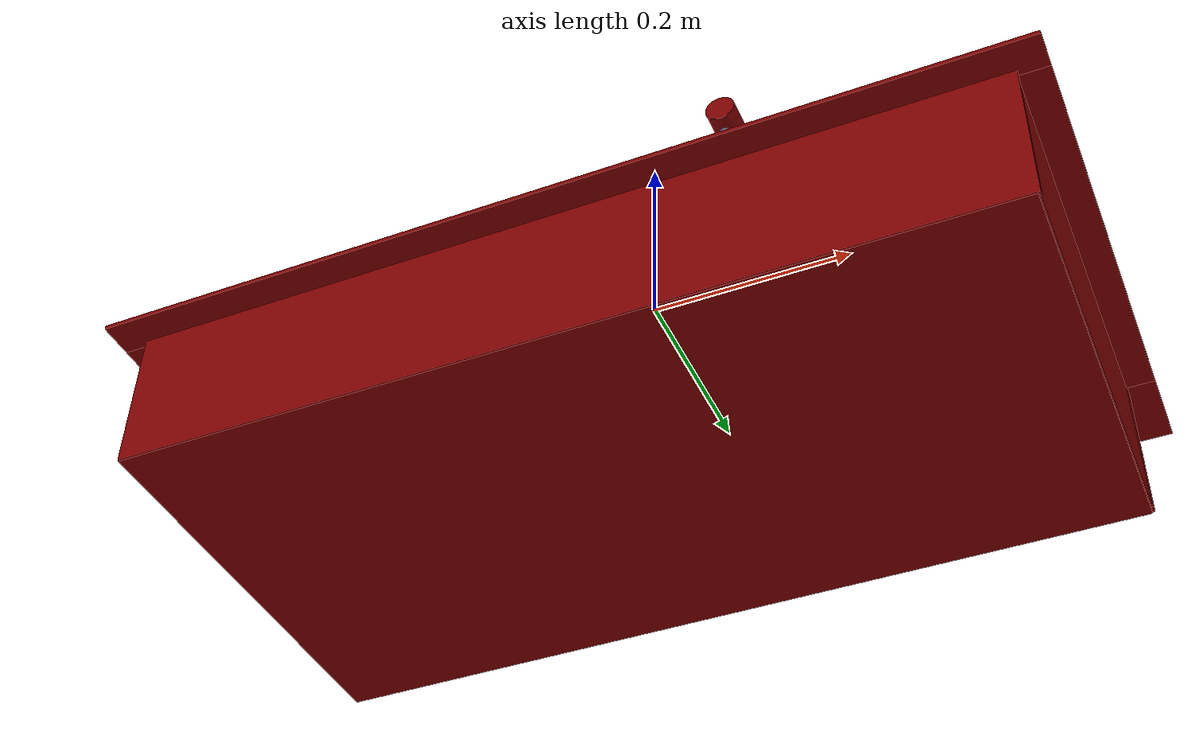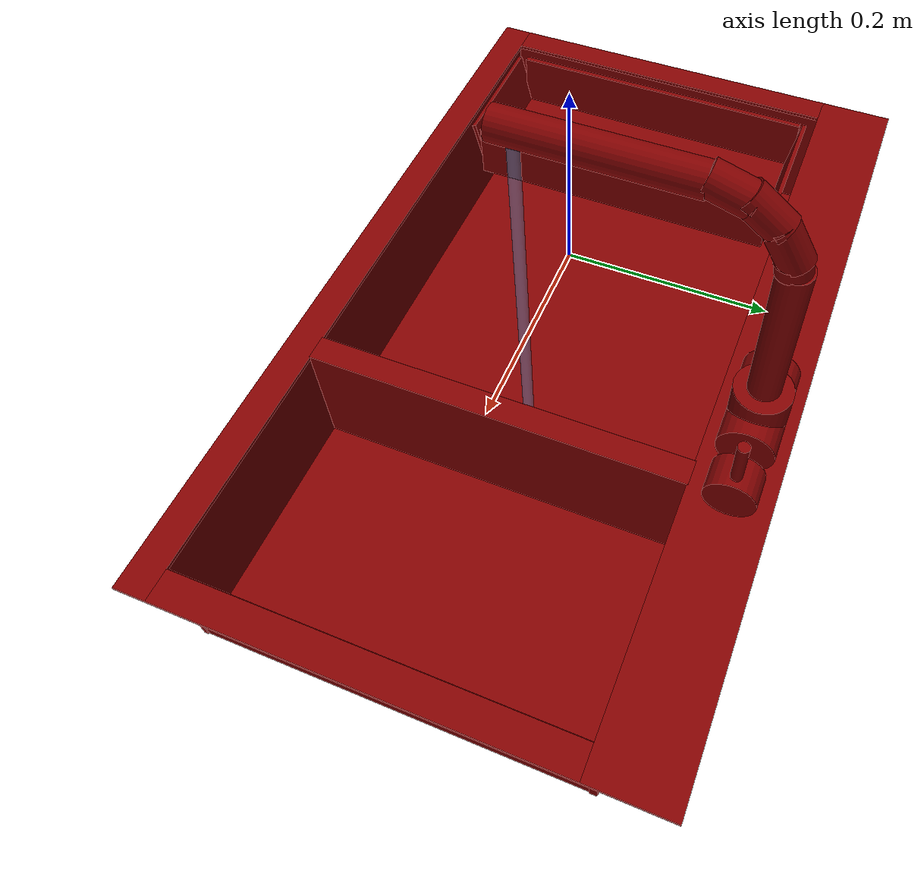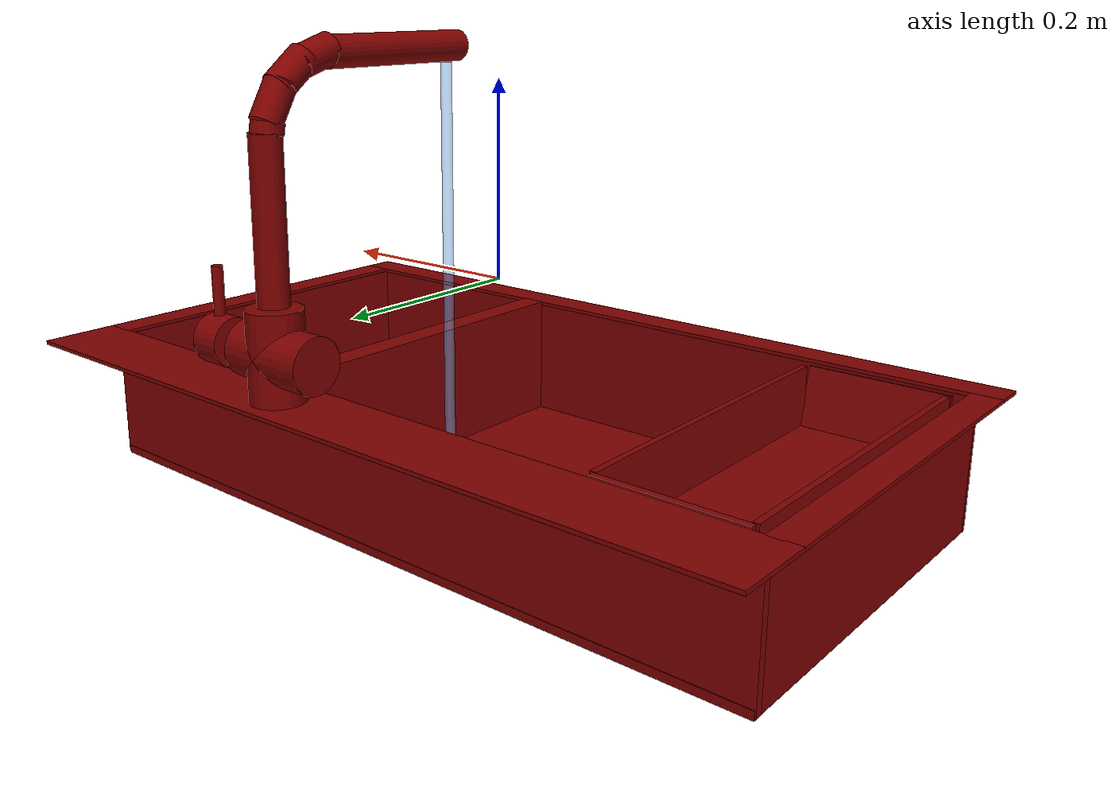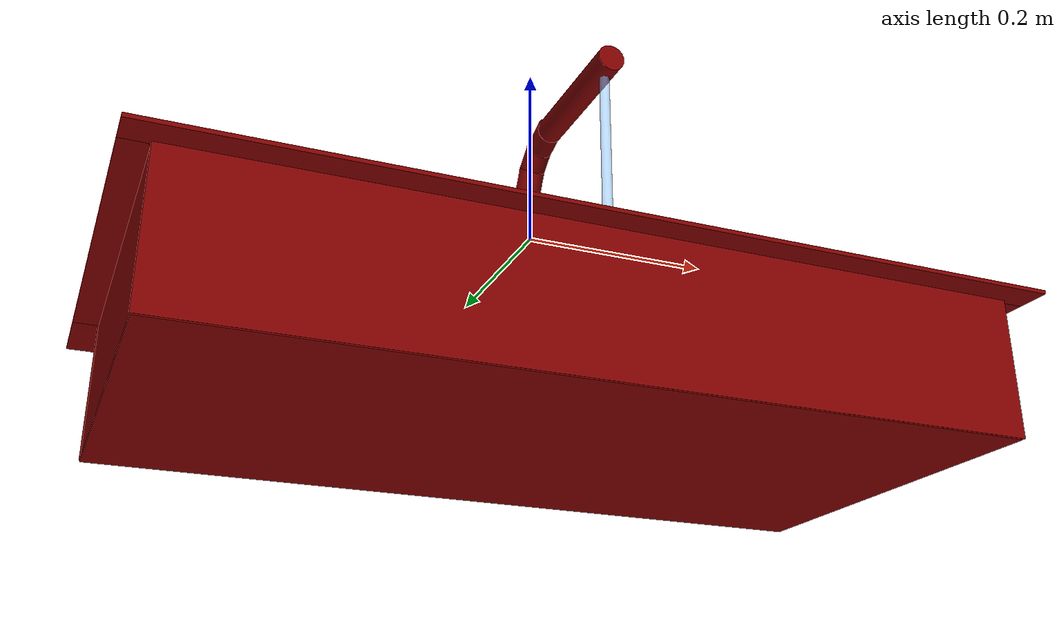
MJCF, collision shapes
<?xml version='1.0' encoding='UTF-8'?>
<mujoco model="model">
  <option timestep="0.002" gravity="0.0 0.0 -9.81"/>
  <compiler angle="radian"/>
  <asset>
    <mesh file="visuals/handle.obj" name="handle_vis"/>
    <mesh file="visuals/Body001.obj" name="Body001_vis"/>
    <mesh file="visuals/Shelf001.obj" name="Shelf001_vis"/>
    <mesh file="visuals/spout.obj" name="spout_vis"/>
    <texture file="visuals/T_BC001.png" name="Body001_material" type="2d"/>
    <material name="Body001_material" rgba="1 1 1 1.0" texture="Body001_material" shininess="0.5" specular="1"/>
    <texture file="visuals/T_BC001.png" name="handle_material" type="2d"/>
    <material name="handle_material" rgba="1 1 1 1.0" texture="handle_material" shininess="0.5" specular="1"/>
    <texture file="visuals/T_BC001.png" name="Shelf001_material" type="2d"/>
    <material name="Shelf001_material" rgba="1 1 1 1.0" texture="Shelf001_material" shininess="0.5" specular="1"/>
    <texture file="visuals/T_BC001.png" name="spout_material" type="2d"/>
    <material name="spout_material" rgba="1 1 1 1.0" texture="spout_material" shininess="0.5" specular="1"/>
  </asset>
  <default>
    <default class="visual">
      <geom conaffinity="0" contype="0" group="1" type="mesh"/>
    </default>
    <default class="collision">
      <geom group="0" rgba="0.5 0 0 0.5" solimp="0.998 0.998 0.001" solref="0.001 2"/>
    </default>
    <default class="spawn">
      <geom group="0" rgba="1 1 1 0.5" contype="0" conaffinity="0"/>
      <site group="0" rgba="1 1 1 0.5"/>
    </default>
    <default class="region">
      <geom group="1" conaffinity="0" contype="0" rgba="0 1 0 0"/>
    </default>
  </default>
  <worldbody>
    <body>
      <body name="object">
        <geom mesh="Body001_vis" type="mesh" solimp="0.998 0.998 0.001" solref="0.001 1" friction="0.95 0.3 0.1" class="visual" material="Body001_material"/>
        <geom class="collision" type="box" pos="-0.00000005 0.21959068 -0.09269838" size="0.43433523178100586 0.041592076420784 0.0019503131043165922" quat="1.0 0.0 0.0 0.0"/>
        <geom class="collision" type="box" pos="-0.00000003 -0.24408982 -0.09269834" size="0.4343351721763611 0.017092427238821983 0.001950352219864726" quat="1.0 0.0 0.0 0.0"/>
        <geom class="collision" type="box" pos="-0.41879227 -0.02447526 -0.09269837" size="0.015541956759989262 0.20394594967365265 0.0019503191579133272" quat="1.0 0.0 0.0 0.0"/>
        <geom class="collision" type="box" pos="0.41818604 -0.02447526 -0.09269837" size="0.016148144379258156 0.20394587516784668 0.0019503184594213963" quat="1.0 0.0 0.0 0.0"/>
        <geom class="collision" type="box" pos="0.40387682 -0.02447526 -0.16496660" size="0.003125104121863842 0.20394578576087952 0.07081758230924606" quat="1.0 0.0 0.0 0.0"/>
        <geom class="collision" type="box" pos="-0.40555182 -0.02447526 -0.16496660" size="0.0031210673041641712 0.20394569635391235 0.07081753760576248" quat="1.0 0.0 0.0 0.0"/>
        <geom class="collision" type="box" pos="-0.00040592 -0.23033389 -0.16496660" size="0.40844181180000305 0.0025401690509170294 0.0708174929022789" quat="1.0 0.0 0.0 0.0"/>
        <geom class="collision" type="box" pos="-0.00063184 0.18240607 -0.16496660" size="0.4087074100971222 0.003984054084867239 0.07081745564937592" quat="1.0 0.0 0.0 0.0"/>
        <geom class="collision" type="box" pos="-0.00126101 -0.02277486 -0.23261875" size="0.4069124162197113 0.20979003608226776 0.004384987056255341" quat="1.0 0.0 0.0 0.0"/>
        <geom class="collision" type="box" pos="0.13953832 -0.02447526 -0.16326587" size="0.01370252389460802 0.20394520461559296 0.072517991065979" quat="1.0 0.0 0.0 0.0"/>
        <geom class="collision" type="cylinder" pos="0.08531411 0.22047810 -0.04586746" size="0.028146835044026375 0.04497091472148895" quat="1.0 0.0 0.0 0.0"/>
        <geom class="collision" type="cylinder" pos="0.07746895 0.22047810 -0.04586746" size="0.028146835044026375 0.049508947879076004" quat="0.7071068286895752 -0.0 0.7071067690849304 0.0"/>
        <body name="handle">
          <joint axis="1.0 0.0 0.0" pos="0.15564533 0.22090486 -0.04684061" limited="true" name="handle_temp_joint" type="hinge" range="-0.7853981633974483 0.7853981633974483" damping="0.5" frictionloss="1" armature="2"/>
          <joint axis="0.0 1.0 0.0" pos="0.15564533 0.22090486 -0.04684061" limited="true" name="handle_joint" type="hinge" range="0 0.5" damping="0.5" frictionloss="1" armature="2"/>
          <geom mesh="handle_vis" type="mesh" solimp="0.998 0.998 0.001" solref="0.001 1" friction="0.95 0.3 0.1" class="visual" material="handle_material"/>
          <geom class="collision" type="cylinder" pos="0.16359383 0.22057717 -0.04616467" size="0.025074021890759468 0.016494393348693848" quat="0.7071068286895752 -0.0 0.7071067690849304 0.0"/>
          <geom name="handle_main" class="collision" type="cylinder" pos="0.16848556 0.22087974 0.00247903" size="0.005681407637894154 0.024712152779102325" quat="1.0 0.0 0.0 0.0"/>
        </body>
        <body name="Shelf001">
          <joint axis="0.0 0.0 1.0" pos="-0.31299823 -0.01496042 -0.12675798" limited="true" name="Shelf001_joint" range="0.0 0.1" type="slide" damping="1" frictionloss="1" armature=".01" stiffness="0.05"/>
          <geom mesh="Shelf001_vis" type="mesh" solimp="0.998 0.998 0.001" solref="0.001 1" friction="0.95 0.3 0.1" class="visual" material="Shelf001_material"/>
          <geom class="collision" type="box" pos="-0.38576856 -0.02591783 -0.12914345" size="0.003121057990938425 0.18550615012645721 0.03499402478337288" quat="1.0 0.0 0.0 0.0"/>
          <geom class="collision" type="box" pos="-0.23709647 -0.02591783 -0.12914345" size="0.003121056826785207 0.18550606071949005 0.03499400243163109" quat="1.0 0.0 0.0 0.0"/>
          <geom class="collision" type="box" pos="-0.31327086 -0.21439934 -0.13034298" size="0.07432298362255096 0.0024261516518890858 0.034993961453437805" quat="0.9940372705459595 0.10904084146022797 0.0 0.0"/>
          <geom class="collision" type="box" pos="-0.31327086 0.15936394 -0.12808326" size="0.07432298362255096 0.0024261516518890858 0.034993961453437805" quat="0.9963814616203308 -0.08499402552843094 -0.0 0.0"/>
          <geom class="collision" type="box" pos="-0.31256491 -0.02591783 -0.16120476" size="0.07255270332098007 0.1855059713125229 0.0029326591175049543" quat="1.0 0.0 0.0 0.0"/>
        </body>
        <body name="spout">
          <joint axis="0.0 0.0 1.0" pos="0.08466801 0.22048787 0.12118351" limited="true" name="spout_joint" range="-1.2217304763960306 1.2217304763960306" type="hinge" damping="10"/>
          <site type="cylinder" rgba="0.5 0.75 1 0.5" size="0.005716228857636452 0.222311332821846" pos="0.08421869 -0.01453175 -0.01146635" name="water"/>
          <geom mesh="spout_vis" type="mesh" solimp="0.998 0.998 0.001" solref="0.001 1" friction="0.95 0.3 0.1" class="visual" material="spout_material"/>
          <geom class="collision" type="cylinder" pos="0.08531411 0.22047810 0.08081535" size="0.015766173601150513 0.07984970510005951" quat="1.0 0.0 0.0 0.0"/>
          <geom class="collision" type="cylinder" pos="0.08531411 0.20923931 0.18625373" size="0.015766173601150513 0.020500902086496353" quat="0.9670015573501587 0.254770427942276 0.0 0.0"/>
          <geom class="collision" type="cylinder" pos="0.08531411 0.18794415 0.21167788" size="0.015766173601150513 0.020500902086496353" quat="0.9004788994789124 0.4348997473716736 0.0 0.0"/>
          <geom class="collision" type="cylinder" pos="0.08531411 0.21762432 0.16426310" size="0.015766173601150513 0.005798363126814365" quat="0.9954514503479004 0.09527008980512619 0.0 0.0"/>
          <geom class="collision" type="cylinder" pos="0.08531411 0.16038254 0.22503071" size="0.015766173601150513 0.020500902086496353" quat="0.8072229027748108 0.5902467370033264 0.0 0.0"/>
          <geom class="collision" type="cylinder" pos="0.08531411 0.05558127 0.22776975" size="0.015766173601150513 0.08815393596887589" quat="0.7071067094802856 0.7071068286895752 0.0 0.0" name="spout_main"/>
        </body>
        <geom class="region" name="reg_basin_left" type="box" pos="-0.051064645000000006 -0.024452210000000002 -0.15938067" size="0.172672575 0.19825164 0.06704065000000001"/>
        <geom class="region" name="reg_basin_right" type="box" pos="0.27666979999999997 -0.024452210000000002 -0.15938067" size="0.11874925 0.19825164 0.06704065000000001"/>
        <geom class="region" name="reg_main" type="box" pos="-2.500000001459668e-08 1.599999999990498e-07 -0.163875875" size="0.435334155 0.26218224999999995 0.07412781499999999"/>
      </body>
    </body>
  </worldbody>
  <actuator>
    <motor name="handle_joint_actuator" joint="handle_joint" gear="10"/>
    <motor name="handle_temp_joint_actuator" joint="handle_temp_joint" gear="10"/>
    <motor name="Shelf001_joint_actuator" joint="Shelf001_joint" gear="10"/>
    <motor name="spout_joint_actuator" joint="spout_joint" gear="10"/>
  </actuator>
</mujoco>
